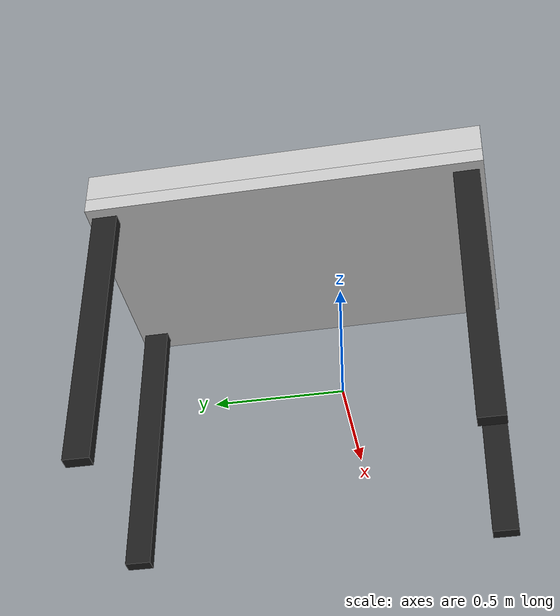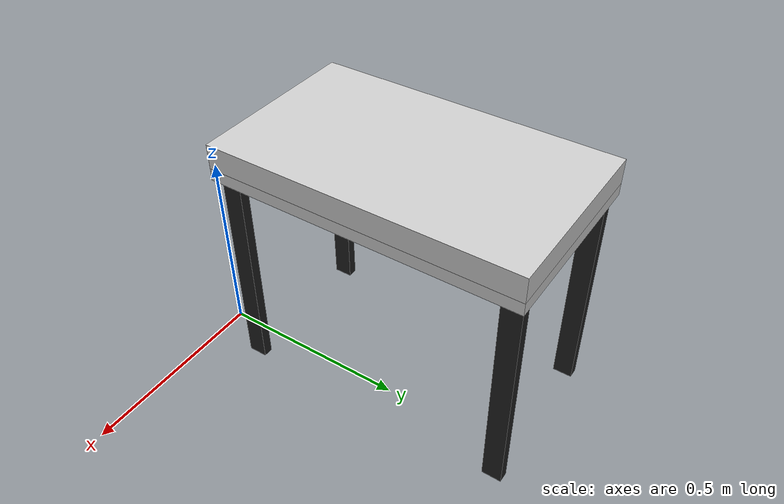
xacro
<?xml version="1.0"?>
<robot xmlns:xacro="http://ros.org/wiki/xacro"
       name="workbench">

  <xacro:include filename="$(find lwr_force_position_controllers)/model/table.urdf.xacro"/>

  <link name="workbench_anchor">
      <origin xyz="0 0 1" rpy="0 0 0"/>
  </link>

  <xacro:model_table name="workbench"
                    parent="workbench_anchor"
                    length="0.725"
                    width="1.25"
                    height="1.05"
                    plate_thickness="0.05"
  		    foam="1"
  		    foam_thickness="0.1"
  		    foam_kp="200"
  		    foam_kd="1">
  <origin xyz="-1.25 0.625 0.05" rpy="0 0 0"/>
  </xacro:model_table>

</robot>

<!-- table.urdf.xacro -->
<robot xmlns:xacro="http://ros.org/wiki/xacro">

<xacro:property name="leg_width" value="0.08" />
<xacro:property name="border_offset" value="0.055" />

<!-- utils /-->
<xacro:include filename="$(find lwr_description)/model/utils.xacro"/>

<!-- conversions -->
<!-- I couldn't make the simulation work with realistic values, so I tweaked the conversion values -->
<xacro:property name="mm_to_m" value="0.001"/>
<xacro:property name="mm2_to_m2" value="0.000001"/>
<xacro:property name="gr_to_Kg" value="0.001"/>

<!-- not so negligible, otherwise simulation fails -->
<xacro:property name="table_mass" value="${40000*gr_to_Kg}"/>
<xacro:property name="table_inertia">
    <origin xyz="0 0 0"/>
    <mass value="${table_mass}"/>
    <inertia ixx="${table_mass * 10 * mm2_to_m2}" ixy="0.0" ixz="0.0" iyy="${table_mass * 10 * mm2_to_m2}" iyz="0.0" izz="${table_mass * 10 * mm2_to_m2}"/>
</xacro:property>
<xacro:property name="foam_mass" value="1.7419375"/>

<xacro:macro name="table_leg" params="parent name *origin">
    <joint name="${name}_joint" type="fixed">
        <xacro:insert_block name="origin"/>
        <parent link="${parent}" />
        <child link="${name}_link" />
    </joint>
    <link name="${name}_link">
        <inertial>
            <xacro:insert_block name="table_inertia"/>
        </inertial>
    <visual>
      <geometry>
        <box size="${leg_width/2} -${leg_width} ${height - foam_thickness - plate_thickness}"/>
      </geometry>
      <material name="Vito/Black"/>
    </visual>
    <collision>
      <geometry>
        <box size="${leg_width/2} -${leg_width} ${height - foam_thickness - plate_thickness}"/>
      </geometry>
    </collision>
    </link>

    <gazebo reference="${name}_link">
    </gazebo>
</xacro:macro>

<xacro:macro name="foam" params="parent *origin">
  <joint name="${parent}_foam_joint" type="fixed">
    <xacro:insert_block name="origin"/>
    <parent link="${parent}"/>
    <child link="${name}_foam_link"/>
  </joint>
  <link name="${name}_foam_link">
    <inertial>
      <mass value="${foam_mass}"/>
      <origin rpy="0 0 0" xyz="0 0 0"/>
      <cuboid_inertia_def length="${length}" width="${width}" height="${foam_thickness}" mass="${foam_mass}"/>
    </inertial>
    <visual>
      <origin xyz="0 0 0"/>
      <geometry>
        <box size="${length} ${width} ${foam_thickness}"/>
      </geometry>
      <material name="Vito/LightGrey"/>
    </visual>
    <collision>
      <origin xyz="0 0 0"/>
      <geometry>
  <box size="${length} ${width} ${foam_thickness}"/>
      </geometry>
    </collision>
  </link>

  <gazebo reference="${name}_foam_link">
    <material>Gazebo/Yellow</material>
    <kp>${foam_kp}</kp>
    <kd>${foam_kd}</kd>
    <mu1>0</mu1>
    <mu2>0</mu2>
  </gazebo>
</xacro:macro>

<xacro:macro name="model_table" params="parent name *origin length width height plate_thickness foam:='no' foam_thickness:=0 foam_kp:=0 foam_kd:=0">
    <joint name="${parent}_${name}_base_joint" type="fixed">
        <xacro:insert_block name="origin"/>
        <parent link="${parent}"/>
        <child link="${name}_plate_link"/>
    </joint>
    <link name="${name}_plate_link">
        <inertial>
            <xacro:insert_block name="table_inertia"/>
        </inertial>
        <visual>
            <origin xyz="${1/2 * length} ${-1/2 * width} ${-1/2 * plate_thickness - foam_thickness}"/>
            <geometry>
                <box size="${length} ${width} ${plate_thickness}"/>
      </geometry>
      <material name="Vito/LightGrey"/>
    </visual>
        <collision>
            <origin xyz="${1/2 * length} ${-1/2 * width} ${-1/2 * plate_thickness -  foam_thickness}"/>
            <geometry>
                <box size="${length} ${width} ${plate_thickness}"/>
            </geometry>
        </collision>
    </link>

    <xacro:table_leg parent="${name}_plate_link" name="${name}_leg_0">
        <origin xyz="${border_offset} -${border_offset} -${1/2 * (foam_thickness + plate_thickness + height)}"/>
    </xacro:table_leg>
    <xacro:table_leg parent="${name}_plate_link" name="${name}_leg_1">
        <origin xyz="${length - border_offset} -${border_offset} -${1/2 * (foam_thickness + plate_thickness + height)}"/>
    </xacro:table_leg>
    <xacro:table_leg parent="${name}_plate_link" name="${name}_leg_2">
        <origin xyz="${border_offset} -${width - border_offset} -${1/2 * (foam_thickness + plate_thickness + height)}"/>
    </xacro:table_leg>
    <xacro:table_leg parent="${name}_plate_link" name="${name}_leg_3">
        <origin xyz="${length - border_offset} -${width - border_offset} -${1/2 * (foam_thickness + plate_thickness + height)}"/>
    </xacro:table_leg>

    <xacro:if value="${foam == 1}">
         <xacro:foam parent="${name}_plate_link">
             <origin xyz="${1/2 * length} ${-1/2 * width} ${-1/2 * foam_thickness}"/>
         </xacro:foam>
    </xacro:if>

    <gazebo reference="${name}_plate_link">
    </gazebo>

</xacro:macro>
</robot>
